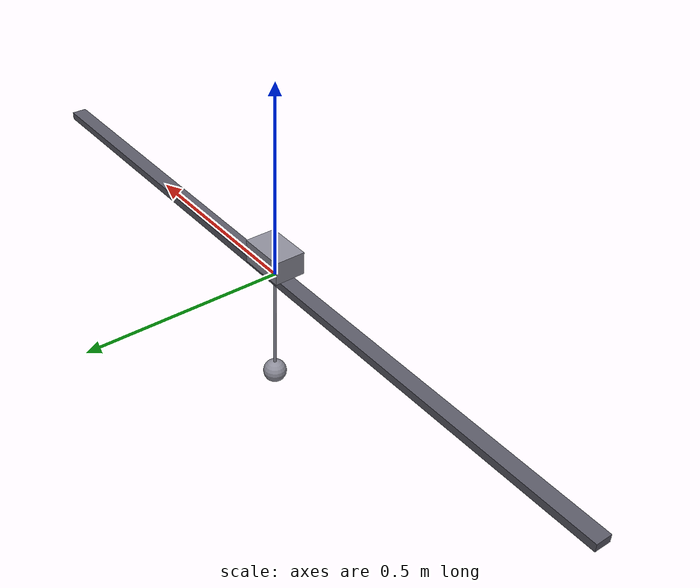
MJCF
<!-- MuJoCo model for LQR design (position actuator, implicitfast for mjd_transitionFD).
     Matches notebooks/LQR-pendulum-position.ipynb. -->
<mujoco model="cart_pendulum_lqr_position">
  <compiler angle="radian" autolimits="true"/>
  <option timestep="0.004166666666666667" gravity="0 0 -9.80665" integrator="implicitfast"/>

  <default>
    <joint damping="0.04" armature="0.001"/>
    <geom rgba="0.55 0.55 0.6 1" friction="0.2 0.05 0.001"/>
  </default>

  <worldbody>
    <light name="main_light" pos="0 -1 1" dir="0 1 -1" diffuse="1 1 1"/>
    <camera name="side" pos="0 -1.2 0.35" xyaxes="1 0 0 0 0 1"/>

    <geom name="rail" type="box" size="1 0.02 0.01" pos="0 0 0"
          rgba="0.35 0.35 0.4 1" contype="0" conaffinity="0"/>

    <body name="cart" pos="0 0 0.05">
      <joint name="cart_slide" type="slide" axis="1 0 0" damping="0.5" limited="false"/>
      <geom name="cart_geom" type="box" size="0.06 0.04 0.03" mass="0.8"/>

      <body name="pendulum" pos="0 0 0">
        <joint name="pendulum_hinge" type="hinge" axis="0 1 0" pos="0 0 0"/>
        <geom name="rod" type="capsule" fromto="0 0 0 0 0 -0.35" size="0.004" mass="0.12"/>
        <geom name="bob" type="sphere" size="0.03" pos="0 0 -0.35" mass="0.12"/>
      </body>
    </body>
  </worldbody>

  <actuator>
    <position name="cart_pos" joint="cart_slide" kp="1200" kv="120"
              ctrllimited="true" ctrlrange="-1.0 1.0"/>
  </actuator>

  <keyframe>
    <key name="upright_0deg" qpos="0 3.14159265359" ctrl="0"/>
  </keyframe>
</mujoco>
